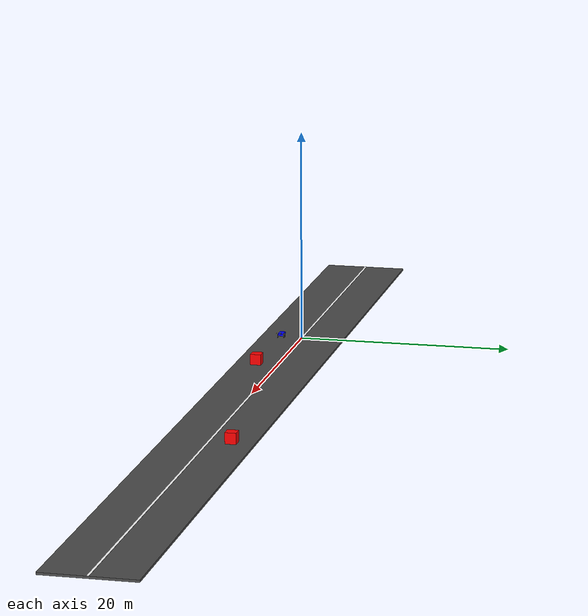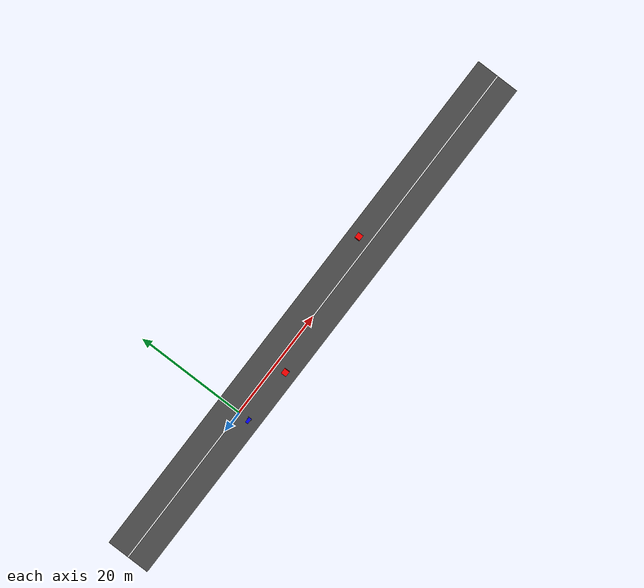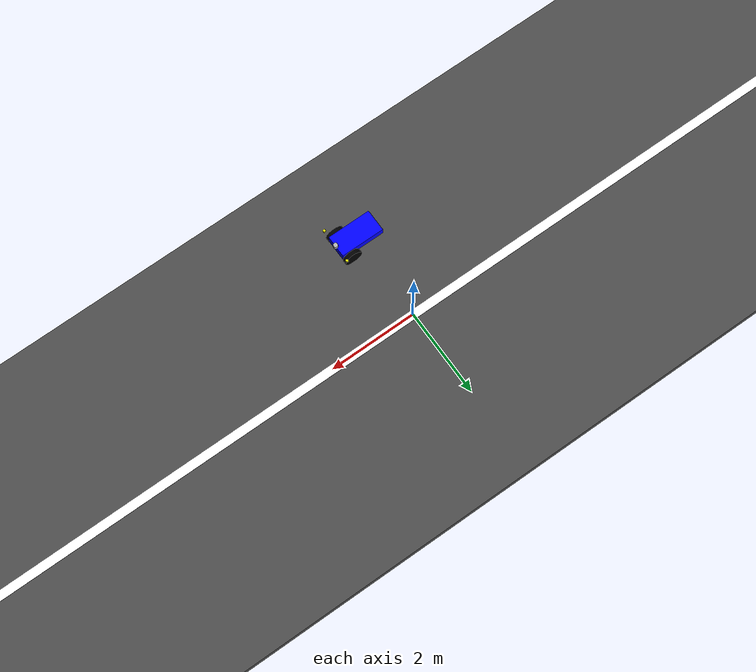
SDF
<?xml version="1.0" ?>
<sdf version="1.8">
    <world name="lane_world">
        <physics name="1ms" type="ignored">
            <max_step_size>0.001</max_step_size>
            <real_time_factor>1.0</real_time_factor>
        </physics>

        <plugin filename="libignition-gazebo-physics-system.so" name="ignition::gazebo::systems::Physics"></plugin>
        <plugin filename="libignition-gazebo-user-commands-system.so" name="ignition::gazebo::systems::UserCommands"></plugin>
        <plugin filename="libignition-gazebo-scene-broadcaster-system.so" name="ignition::gazebo::systems::SceneBroadcaster"></plugin>
        <plugin filename="libignition-gazebo-sensors-system.so" name="ignition::gazebo::systems::Sensors">
            <render_engine>ogre2</render_engine>
        </plugin>

        <scene>
            <ambient>0.8 0.8 0.8 1.0</ambient>
            <background>0.5 0.7 0.9 1.0</background>
            <shadows>true</shadows>
        </scene>

        <light type="directional" name="sun">
            <cast_shadows>true</cast_shadows>
            <pose>0 0 10 0 0 0</pose>
            <diffuse>1.0 1.0 1.0 1</diffuse>
            <specular>0.2 0.2 0.2 1</specular>
            <direction>-0.5 0.1 -0.9</direction>
        </light>

        <model name="road_system">
            <static>true</static>
            <pose>20 0 -0.1 0 0 0</pose>
            <link name="road_base">
                <collision name="collision">
                    <geometry>
                        <box>
                            <size>100 8 0.2</size>
                        </box>
                    </geometry>
                </collision>
                <visual name="visual">
                    <geometry>
                        <box>
                            <size>100 8 0.2</size>
                        </box>
                    </geometry>
                    <material>
                        <ambient>0.3 0.3 0.3 1</ambient>
                        <diffuse>0.3 0.3 0.3 1</diffuse>
                    </material>
                </visual>
            </link>
            <link name="center_line">
                <pose>0 0 0.11 0 0 0</pose>
                <visual name="visual">
                    <geometry>
                        <box>
                            <size>100 0.2 0.01</size>
                        </box>
                    </geometry>
                    <material>
                        <ambient>1 1 1 1</ambient>
                        <diffuse>1 1 1 1</diffuse>
                    </material>
                </visual>
            </link>
        </model>

        <model name="vehicle">
            <pose>0 -2.0 0.3 0 0 0</pose>
            <link name="chassis">
                <inertial>
                    <mass>10.0</mass>
                    <inertia>
                        <ixx>0.5</ixx>
                        <ixy>0</ixy>
                        <ixz>0</ixz>
                        <iyy>0.5</iyy>
                        <iyz>0</iyz>
                        <izz>0.5</izz>
                    </inertia>
                </inertial>
                <collision name="collision">
                    <geometry>
                        <box>
                            <size>1.0 0.5 0.2</size>
                        </box>
                    </geometry>
                </collision>
                <visual name="visual">
                    <geometry>
                        <box>
                            <size>1.0 0.5 0.2</size>
                        </box>
                    </geometry>
                    <material>
                        <ambient>0 0 1 1</ambient>
                    </material>
                </visual>
            </link>

            <link name="left_wheel">
                <pose>0.3 0.3 -0.125 -1.5707 0 0</pose>
                <collision name="c">
                    <geometry>
                        <cylinder>
                            <radius>0.2</radius>
                            <length>0.1</length>
                        </cylinder>
                    </geometry>
                    <surface>
                        <friction>
                            <ode>
                                <mu>1.0</mu>
                                <mu2>1.0</mu2>
                            </ode>
                        </friction>
                    </surface>
                </collision>
                <visual name="v">
                    <geometry>
                        <cylinder>
                            <radius>0.2</radius>
                            <length>0.1</length>
                        </cylinder>
                    </geometry>
                    <material>
                        <ambient>0 0 0 1</ambient>
                    </material>
                </visual>
            </link>
            <link name="right_wheel">
                <pose>0.3 -0.3 -0.125 -1.5707 0 0</pose>
                <collision name="c">
                    <geometry>
                        <cylinder>
                            <radius>0.2</radius>
                            <length>0.1</length>
                        </cylinder>
                    </geometry>
                    <surface>
                        <friction>
                            <ode>
                                <mu>1.0</mu>
                                <mu2>1.0</mu2>
                            </ode>
                        </friction>
                    </surface>
                </collision>
                <visual name="v">
                    <geometry>
                        <cylinder>
                            <radius>0.2</radius>
                            <length>0.1</length>
                        </cylinder>
                    </geometry>
                    <material>
                        <ambient>0 0 0 1</ambient>
                    </material>
                </visual>
            </link>
            <link name="caster">
                <pose>-0.3 0 -0.125 0 0 0</pose>
                <collision name="c">
                    <geometry>
                        <sphere>
                            <radius>0.2</radius>
                        </sphere>
                    </geometry>
                    <surface>
                        <friction>
                            <ode>
                                <mu>0.01</mu>
                                <mu2>0.01</mu2>
                            </ode>
                        </friction>
                    </surface>
                </collision>
                <visual name="v">
                    <geometry>
                        <sphere>
                            <radius>0.2</radius>
                        </sphere>
                    </geometry>
                    <material>
                        <ambient>0 0 0 1</ambient>
                    </material>
                </visual>
            </link>
            <joint name="left_wheel_joint" type="revolute">
                <parent>chassis</parent>
                <child>left_wheel</child>
                <axis>
                    <xyz>0 0 1</xyz>
                </axis>
            </joint>
            <joint name="right_wheel_joint" type="revolute">
                <parent>chassis</parent>
                <child>right_wheel</child>
                <axis>
                    <xyz>0 0 1</xyz>
                </axis>
            </joint>
            <joint name="caster_joint" type="fixed">
                <parent>chassis</parent>
                <child>caster</child>
            </joint>

            <link name="lidar_link">
                <pose>0.5 0 0.15 0 0 0</pose>
                <visual name="visual">
                    <geometry>
                        <cylinder>
                            <radius>0.05</radius>
                            <length>0.1</length>
                        </cylinder>
                    </geometry>
                </visual>
                <sensor name='gpu_lidar' type='gpu_lidar'>
                    <pose>0 0 0 0 0 0</pose>
                    <topic>scan</topic>
                    <update_rate>20</update_rate>
                    <ray>
                        <scan>
                            <horizontal>
                                <samples>180</samples>
                                <resolution>1</resolution>
                                <min_angle>-1.0</min_angle>
                                <max_angle>1.0</max_angle>
                            </horizontal>
                        </scan>
                        <range>
                            <min>0.3</min>
                            <max>15.0</max>
                        </range>
                    </ray>
                    <always_on>1</always_on>
                    <visualize>true</visualize>
                </sensor>
            </link>
            <joint name="lidar_joint" type="fixed">
                <parent>chassis</parent>
                <child>lidar_link</child>
            </joint>

            <link name="cliff_left_link">
                <pose>0.5 0.4 0.15 0 1.57 0</pose>
                <visual name="v">
                    <geometry>
                        <box>
                            <size>0.05 0.05 0.05</size>
                        </box>
                    </geometry>
                    <material>
                        <ambient>1 1 0 1</ambient>
                    </material>
                </visual>
                <sensor name='cliff_left' type='gpu_lidar'>
                    <topic>cliff_left</topic>
                    <update_rate>20</update_rate>
                    <ray>
                        <scan>
                            <horizontal>
                                <samples>1</samples>
                                <resolution>1</resolution>
                                <min_angle>0</min_angle>
                                <max_angle>0</max_angle>
                            </horizontal>
                        </scan>
                        <range>
                            <min>0.05</min>
                            <max>2.0</max>
                        </range>
                    </ray>
                    <always_on>1</always_on>
                    <visualize>true</visualize>
                </sensor>
            </link>
            <joint name="cliff_left_joint" type="fixed">
                <parent>chassis</parent>
                <child>cliff_left_link</child>
            </joint>

            <link name="cliff_right_link">
                <pose>0.5 -0.4 0.15 0 1.57 0</pose>
                <visual name="v">
                    <geometry>
                        <box>
                            <size>0.05 0.05 0.05</size>
                        </box>
                    </geometry>
                    <material>
                        <ambient>1 1 0 1</ambient>
                    </material>
                </visual>
                <sensor name='cliff_right' type='gpu_lidar'>
                    <topic>cliff_right</topic>
                    <update_rate>20</update_rate>
                    <ray>
                        <scan>
                            <horizontal>
                                <samples>1</samples>
                                <resolution>1</resolution>
                                <min_angle>0</min_angle>
                                <max_angle>0</max_angle>
                            </horizontal>
                        </scan>
                        <range>
                            <min>0.05</min>
                            <max>2.0</max>
                        </range>
                    </ray>
                    <always_on>1</always_on>
                    <visualize>true</visualize>
                </sensor>
            </link>
            <joint name="cliff_right_joint" type="fixed">
                <parent>chassis</parent>
                <child>cliff_right_link</child>
            </joint>

            <plugin filename="libignition-gazebo-diff-drive-system.so" name="ignition::gazebo::systems::DiffDrive">
                <left_joint>left_wheel_joint</left_joint>
                <right_joint>right_wheel_joint</right_joint>
                <wheel_separation>0.6</wheel_separation>
                <wheel_diameter>0.4</wheel_diameter>
                <topic>cmd_vel</topic>
                <odom_topic>odom</odom_topic>
                <frame_id>odom</frame_id>
                <child_frame_id>chassis</child_frame_id>
            </plugin>
        </model>

        <model name="obstacle_1">
            <pose>10 -2.0 0.5 0 0 0</pose>
            <static>true</static>
            <link name="link">
                <visual name="v">
                    <geometry>
                        <box>
                            <size>1 1 1</size>
                        </box>
                    </geometry>
                    <material>
                        <ambient>1 0 0 1</ambient>
                    </material>
                </visual>
                <collision name="c">
                    <geometry>
                        <box>
                            <size>1 1 1</size>
                        </box>
                    </geometry>
                </collision>
            </link>
        </model>
        <model name="obstacle_2">
            <pose>35 2.0 0.5 0 0 0</pose>
            <static>true</static>
            <link name="link">
                <visual name="v">
                    <geometry>
                        <box>
                            <size>1 1 1</size>
                        </box>
                    </geometry>
                    <material>
                        <ambient>1 0 0 1</ambient>
                    </material>
                </visual>
                <collision name="c">
                    <geometry>
                        <box>
                            <size>1 1 1</size>
                        </box>
                    </geometry>
                </collision>
            </link>
        </model>
    </world>
</sdf>
